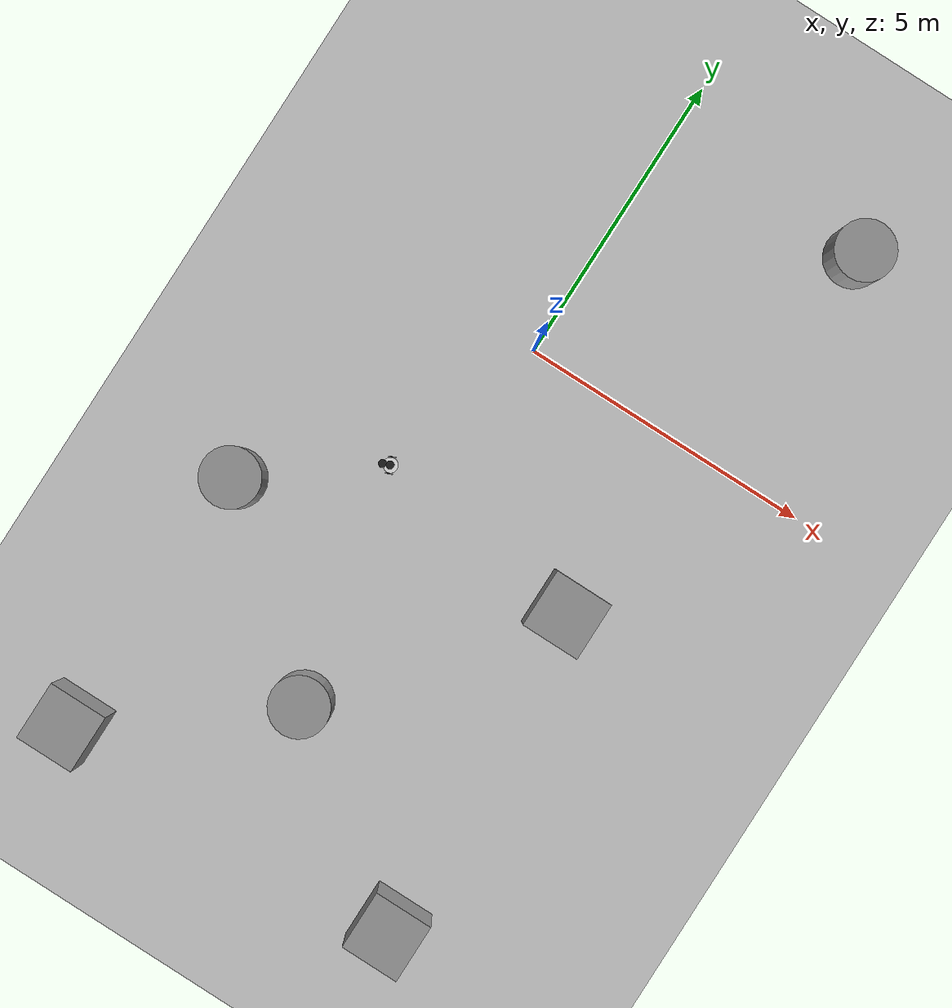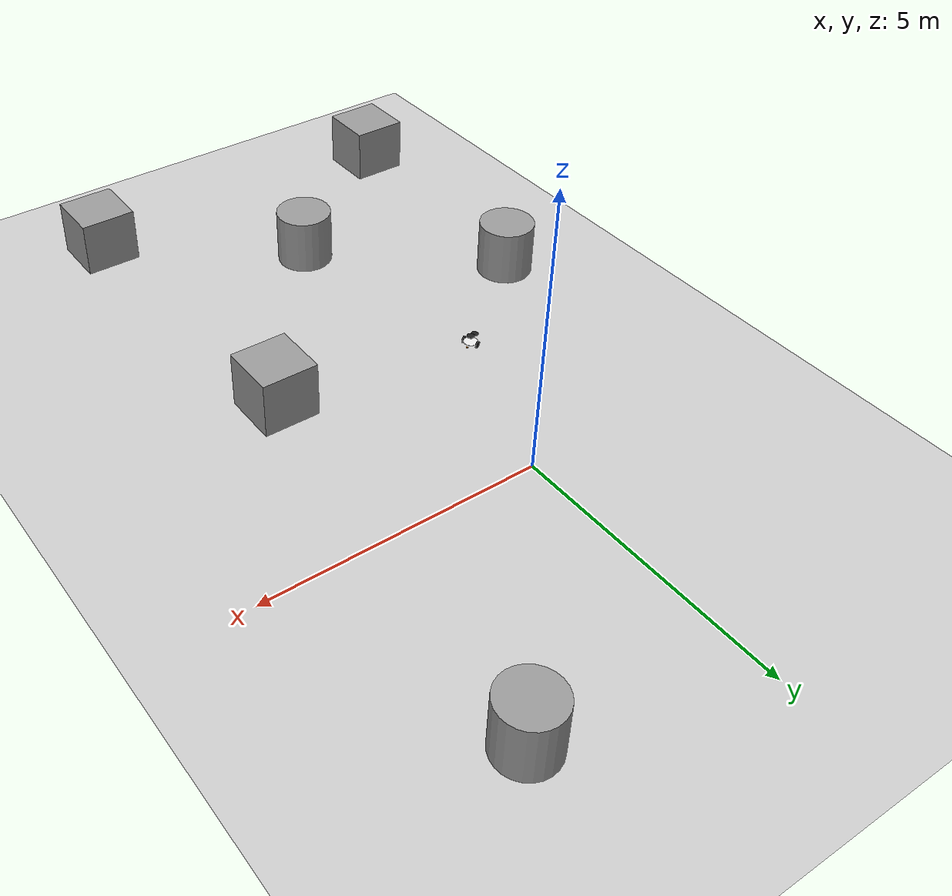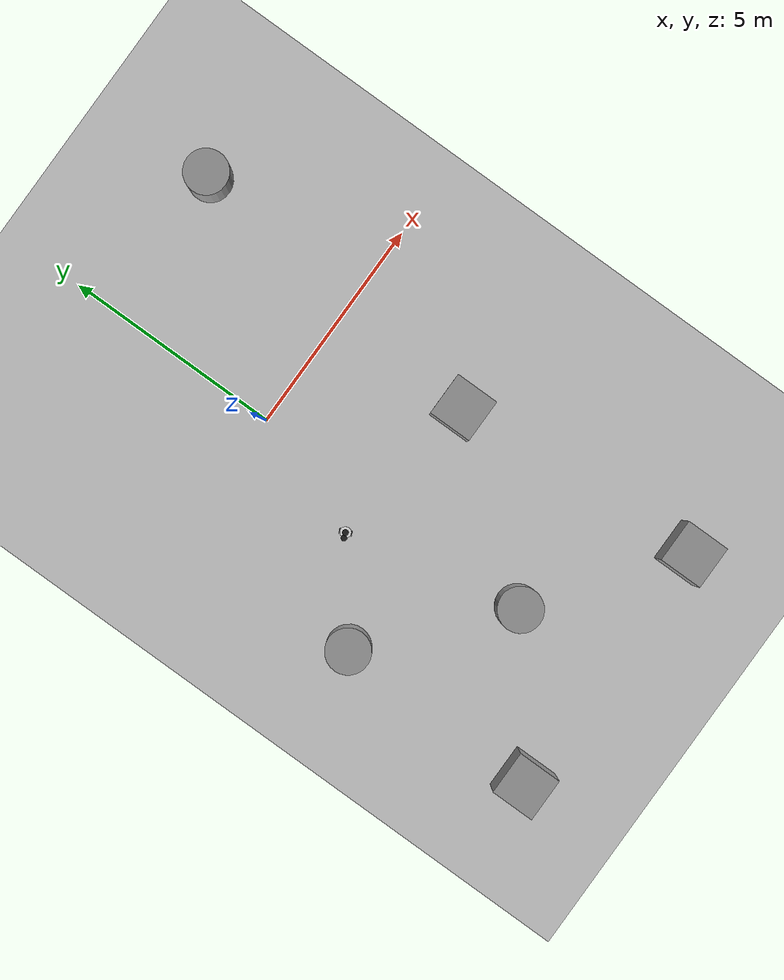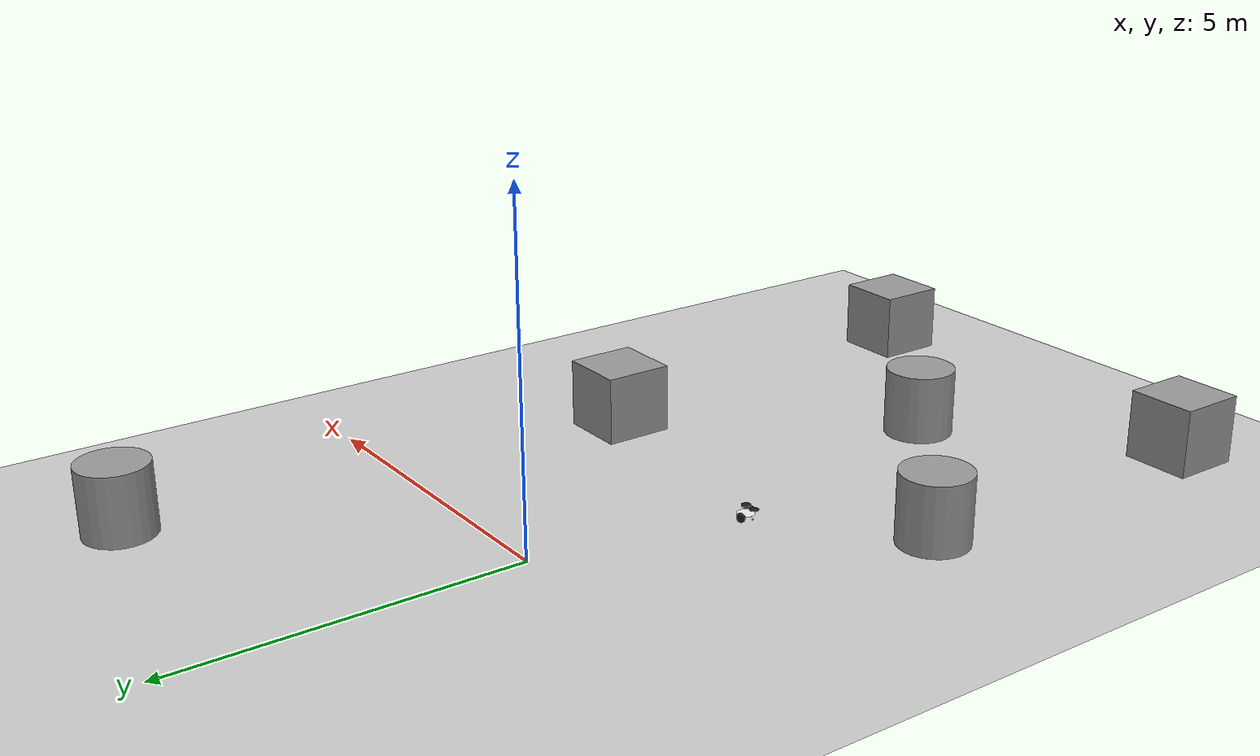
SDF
<sdf version="1.7">
 <world name="default">
  <light name="sun" type="directional">
   <pose>0 0 10 0 -0 0</pose>
   <diffuse>0.8 0.8 0.8 1</diffuse>
   <specular>0.2 0.2 0.2 1</specular>
   <attenuation>
    <range>1000</range>
    <constant>0.9</constant>
    <linear>0.01</linear>
    <quadratic>0.001</quadratic>
   </attenuation>
   <direction>-0.5 0.1 -0.9</direction>
   <spot><inner_angle>0</inner_angle><outer_angle>0</outer_angle><falloff>0</falloff></spot>
  </light>
  <model name="ground_plane">
   <static>1</static>
   <link name="link">
    <collision name="collision">
     <geometry><plane><normal>0 0 1</normal><size>100 100</size></plane></geometry>
     <surface>
      <contact><collide_bitmask>65535</collide_bitmask></contact>
      <friction><ode><mu>100</mu><mu2>50</mu2></ode></friction>
     </surface>
    </collision>
    <visual name="visual">
     <cast_shadows>0</cast_shadows>
     <geometry><plane><normal>0 0 1</normal><size>100 100</size></plane></geometry>
     <material>
      <script><uri>file://media/materials/scripts/gazebo.material</uri><name>Gazebo/Grey</name></script>
     </material>
    </visual>
   </link>
  </model>
  <gravity>0 0 -9.8</gravity>
  <magnetic_field>6e-06 2.3e-05 -4.2e-05</magnetic_field>
  <atmosphere type="adiabatic"/>
  <physics type="ode">
   <max_step_size>0.001</max_step_size>
   <real_time_factor>1</real_time_factor>
   <real_time_update_rate>1000</real_time_update_rate>
  </physics>
  <scene><ambient>0.4 0.4 0.4 1</ambient><background>0.7 0.7 0.7 1</background><shadows>1</shadows></scene>
  <spherical_coordinates>
   <surface_model>EARTH_WGS84</surface_model>
   <latitude_deg>0</latitude_deg>
   <longitude_deg>0</longitude_deg>
   <elevation>0</elevation>
   <heading_deg>0</heading_deg>
  </spherical_coordinates>
  <model name="my_bot">
   <link name="base_link">
    <inertial>
     <pose>0 0 0.0363 0 -0 0</pose>
     <mass>1</mass>
     <inertia>
      <ixx>0.00669881</ixx>
      <ixy>0</ixy>
      <ixz>0</ixz>
      <iyy>0.00890381</iyy>
      <iyz>0</iyz>
      <izz>0.0068026</izz>
     </inertia>
    </inertial>
    <collision name="base_link_fixed_joint_lump__chassis_collision">
     <pose>0 0 0.015 0 -0 0</pose>
     <geometry><cylinder><length>0.003</length><radius>0.125</radius></cylinder></geometry>
    </collision>
    <collision name="base_link_fixed_joint_lump__caster1_collision_1">
     <pose>0.105 0 -0.051 0 -0 0</pose>
     <geometry><sphere><radius>0.015</radius></sphere></geometry>
     <surface><friction><ode><mu>0.001</mu><mu2>0.001</mu2></ode></friction></surface>
    </collision>
    <collision name="base_link_fixed_joint_lump__caster2_collision_2">
     <pose>-0.105 0 -0.051 0 -0 0</pose>
     <geometry><sphere><radius>0.015</radius></sphere></geometry>
     <surface><friction><ode><mu>0.001</mu><mu2>0.001</mu2></ode></friction></surface>
    </collision>
    <collision name="base_link_fixed_joint_lump__laser_frame_collision_3">
     <pose>0 0 0.13 0 -0 0</pose>
     <geometry><cylinder><length>0.015</length><radius>0.067</radius></cylinder></geometry>
    </collision>
    <visual name="base_link_fixed_joint_lump__chassis_visual">
     <pose>0 0 0.015 0 -0 0</pose>
     <geometry><cylinder><length>0.003</length><radius>0.125</radius></cylinder></geometry>
     <material>
      <script><name>Gazebo/White</name><uri>file://media/materials/scripts/gazebo.material</uri></script>
     </material>
    </visual>
    <visual name="base_link_fixed_joint_lump__camera_link_visual_1">
     <pose>0.125 0 0.1 0 -0 0</pose>
     <geometry><cylinder><length>0.001</length><radius>0.067</radius></cylinder></geometry>
     <material>
      <script><name>Gazebo/Black</name><uri>file://media/materials/scripts/gazebo.material</uri></script>
     </material>
    </visual>
    <visual name="base_link_fixed_joint_lump__caster1_visual_2">
     <pose>0.105 0 -0.051 0 -0 0</pose>
     <geometry><sphere><radius>0.015</radius></sphere></geometry>
     <material>
      <script><name>Gazebo/Orange</name><uri>file://media/materials/scripts/gazebo.material</uri></script>
     </material>
    </visual>
    <visual name="base_link_fixed_joint_lump__caster2_visual_3">
     <pose>-0.105 0 -0.051 0 -0 0</pose>
     <geometry><sphere><radius>0.015</radius></sphere></geometry>
     <material>
      <script><name>Gazebo/Orange</name><uri>file://media/materials/scripts/gazebo.material</uri></script>
     </material>
    </visual>
    <visual name="base_link_fixed_joint_lump__laser_frame_visual_4">
     <pose>0 0 0.13 0 -0 0</pose>
     <geometry><cylinder><length>0.015</length><radius>0.067</radius></cylinder></geometry>
     <material>
      <script><name>Gazebo/Black</name><uri>file://media/materials/scripts/gazebo.material</uri></script>
     </material>
    </visual>
    <sensor name="camera" type="camera">
     <visualize>1</visualize>
     <update_rate>10</update_rate>
     <camera>
      <horizontal_fov>1.089</horizontal_fov>
      <image><format>R8G8B8</format><width>640</width><height>480</height></image>
      <clip><near>0.05</near><far>8</far></clip>
     </camera>
     <plugin name="camera_controller" filename="libgazebo_ros_camera.so">
      <frame_name>camera_link_optical</frame_name>
     </plugin>
     <pose>0.125 0 0.1 0 -0 0</pose>
    </sensor>
    <sensor name="laser" type="ray">
     <visualize>1</visualize>
     <update_rate>10</update_rate>
     <ray>
      <scan>
       <horizontal>
        <samples>360</samples>
        <min_angle>-3.14</min_angle>
        <max_angle>3.14</max_angle>
        <resolution>1</resolution>
       </horizontal>
       <vertical><samples>1</samples><min_angle>0</min_angle><max_angle>0</max_angle></vertical>
      </scan>
      <range><min>0.3</min><max>12</max></range>
     </ray>
     <plugin name="laser_controller" filename="libgazebo_ros_ray_sensor.so">
      <ros><argument>~/out:=scan</argument></ros>
      <output_type>sensor_msgs/LaserScan</output_type>
      <frame_name>laser_frame</frame_name>
     </plugin>
     <pose>0 0 0.13 0 -0 0</pose>
    </sensor>
   </link>
   <joint name="left_wheel_joint" type="revolute">
    <pose relative_to="base_link">0 0.135 0 -1.5708 0 0</pose>
    <parent>base_link</parent>
    <child>left_wheel</child>
    <axis>
     <xyz>0 0 1</xyz>
     <limit><lower>-1e+16</lower><upper>1e+16</upper></limit>
     <dynamics><spring_reference>0</spring_reference><spring_stiffness>0</spring_stiffness></dynamics>
    </axis>
   </joint>
   <link name="left_wheel">
    <pose relative_to="left_wheel_joint">0 0 0 0 -0 0</pose>
    <inertial>
     <mass>0.3</mass>
     <inertia>
      <ixx>0.0003423</ixx>
      <ixy>0</ixy>
      <ixz>0</ixz>
      <iyy>0.0003423</iyy>
      <iyz>0</iyz>
      <izz>0.00067335</izz>
     </inertia>
    </inertial>
    <collision name="left_wheel_collision">
     <geometry><cylinder><length>0.015</length><radius>0.067</radius></cylinder></geometry>
    </collision>
    <visual name="left_wheel_visual">
     <geometry><cylinder><length>0.015</length><radius>0.067</radius></cylinder></geometry>
     <material>
      <script><name>Gazebo/Black</name><uri>file://media/materials/scripts/gazebo.material</uri></script>
     </material>
    </visual>
   </link>
   <joint name="right_wheel_joint" type="revolute">
    <pose relative_to="base_link">0 -0.135 0 1.5708 -0 0</pose>
    <parent>base_link</parent>
    <child>right_wheel</child>
    <axis>
     <xyz>0 0 -1</xyz>
     <limit><lower>-1e+16</lower><upper>1e+16</upper></limit>
     <dynamics><spring_reference>0</spring_reference><spring_stiffness>0</spring_stiffness></dynamics>
    </axis>
   </joint>
   <link name="right_wheel">
    <pose relative_to="right_wheel_joint">0 0 0 0 -0 0</pose>
    <inertial>
     <mass>0.3</mass>
     <inertia>
      <ixx>0.0003423</ixx>
      <ixy>0</ixy>
      <ixz>0</ixz>
      <iyy>0.0003423</iyy>
      <iyz>0</iyz>
      <izz>0.00067335</izz>
     </inertia>
    </inertial>
    <collision name="right_wheel_collision">
     <geometry><cylinder><length>0.015</length><radius>0.067</radius></cylinder></geometry>
    </collision>
    <visual name="right_wheel_visual">
     <geometry><cylinder><length>0.015</length><radius>0.067</radius></cylinder></geometry>
     <material>
      <script><name>Gazebo/Black</name><uri>file://media/materials/scripts/gazebo.material</uri></script>
     </material>
    </visual>
   </link>
   <static>0</static>
   <plugin name="diff_drive" filename="libgazebo_ros_diff_drive.so">
    <left_joint>left_wheel_joint</left_joint>
    <right_joint>right_wheel_joint</right_joint>
    <wheel_separation>0.135</wheel_separation>
    <wheel_diameter>0.067</wheel_diameter>
    <max_wheel_torque>200</max_wheel_torque>
    <max_wheel_acceleration>10.0</max_wheel_acceleration>
    <odometry_frame>odom</odometry_frame>
    <robot_base_frame>base_link</robot_base_frame>
    <publish_odom>1</publish_odom>
    <publish_odom_tf>1</publish_odom_tf>
    <publish_wheel_tf>1</publish_wheel_tf>
   </plugin>
   <pose>-0.943931 -2.80273 0.2568 0 0.009546 -2.76545</pose>
  </model>
  <model name="unit_box">
   <pose>2.66132 -3.27306 0.6898 -0 -0 -0</pose>
   <link name="link">
    <inertial>
     <mass>1</mass>
     <inertia>
      <ixx>0.166667</ixx>
      <ixy>0</ixy>
      <ixz>0</ixz>
      <iyy>0.166667</iyy>
      <iyz>0</iyz>
      <izz>0.166667</izz>
     </inertia>
    </inertial>
    <collision name="collision"><geometry><box><size>1 1 1</size></box></geometry></collision>
    <visual name="visual">
     <geometry><box><size>1 1 1</size></box></geometry>
     <material>
      <script><name>Gazebo/Grey</name><uri>file://media/materials/scripts/gazebo.material</uri></script>
     </material>
    </visual>
   </link>
  </model>
  <model name="unit_box_0">
   <pose>2.99999 -9.00004 0.6898 -0 -0 -3e-06</pose>
   <link name="link">
    <inertial>
     <mass>1</mass>
     <inertia>
      <ixx>0.166667</ixx>
      <ixy>0</ixy>
      <ixz>0</ixz>
      <iyy>0.166667</iyy>
      <iyz>0</iyz>
      <izz>0.166667</izz>
     </inertia>
    </inertial>
    <collision name="collision"><geometry><box><size>1 1 1</size></box></geometry></collision>
    <visual name="visual">
     <geometry><box><size>1 1 1</size></box></geometry>
     <material>
      <script><name>Gazebo/Grey</name><uri>file://media/materials/scripts/gazebo.material</uri></script>
     </material>
    </visual>
   </link>
  </model>
  <model name="unit_box_1">
   <pose>-3.01384 -8.99274 0.689802 -4e-06 -0 0.00062</pose>
   <link name="link">
    <inertial>
     <mass>1</mass>
     <inertia>
      <ixx>0.166667</ixx>
      <ixy>0</ixy>
      <ixz>0</ixz>
      <iyy>0.166667</iyy>
      <iyz>0</iyz>
      <izz>0.166667</izz>
     </inertia>
    </inertial>
    <collision name="collision"><geometry><box><size>1 1 1</size></box></geometry></collision>
    <visual name="visual">
     <geometry><box><size>1 1 1</size></box></geometry>
     <material>
      <script><name>Gazebo/Grey</name><uri>file://media/materials/scripts/gazebo.material</uri></script>
     </material>
    </visual>
   </link>
  </model>
  <model name="unit_cylinder">
   <pose>-2.90419 -4.30574 0.689802 1e-06 -5e-06 -0.00023</pose>
   <link name="link">
    <inertial>
     <mass>1</mass>
     <inertia><ixx>0.145833</ixx><ixy>0</ixy><ixz>0</ixz><iyy>0.145833</iyy><iyz>0</iyz><izz>0.125</izz></inertia>
    </inertial>
    <collision name="collision">
     <geometry><cylinder><radius>0.5</radius><length>1</length></cylinder></geometry>
    </collision>
    <visual name="visual">
     <geometry><cylinder><radius>0.5</radius><length>1</length></cylinder></geometry>
     <material>
      <script><name>Gazebo/Grey</name><uri>file://media/materials/scripts/gazebo.material</uri></script>
     </material>
    </visual>
   </link>
  </model>
  <model name="unit_cylinder_0">
   <pose>-0.074452 -6.72801 0.689798 3e-06 1e-06 -8.3e-05</pose>
   <link name="link">
    <inertial>
     <mass>1</mass>
     <inertia><ixx>0.145833</ixx><ixy>0</ixy><ixz>0</ixz><iyy>0.145833</iyy><iyz>0</iyz><izz>0.125</izz></inertia>
    </inertial>
    <collision name="collision">
     <geometry><cylinder><radius>0.5</radius><length>1</length></cylinder></geometry>
    </collision>
    <visual name="visual">
     <geometry><cylinder><radius>0.5</radius><length>1</length></cylinder></geometry>
     <material>
      <script><name>Gazebo/Grey</name><uri>file://media/materials/scripts/gazebo.material</uri></script>
     </material>
    </visual>
   </link>
  </model>
  <model name="unit_cylinder_1">
   <pose>3.50466 3.99916 0.689801 1e-06 1e-06 -0.000195</pose>
   <link name="link">
    <inertial>
     <mass>1</mass>
     <inertia><ixx>0.145833</ixx><ixy>0</ixy><ixz>0</ixz><iyy>0.145833</iyy><iyz>0</iyz><izz>0.125</izz></inertia>
    </inertial>
    <collision name="collision">
     <geometry><cylinder><radius>0.5</radius><length>1</length></cylinder></geometry>
    </collision>
    <visual name="visual">
     <geometry><cylinder><radius>0.5</radius><length>1</length></cylinder></geometry>
     <material>
      <script><name>Gazebo/Grey</name><uri>file://media/materials/scripts/gazebo.material</uri></script>
     </material>
    </visual>
   </link>
  </model>
 </world>
</sdf>
